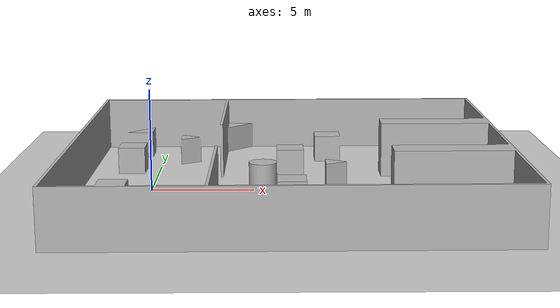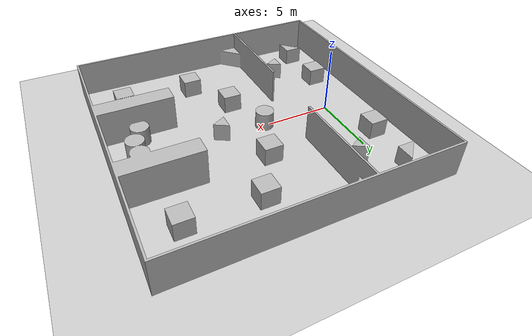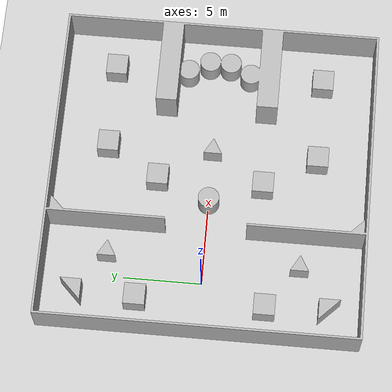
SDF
<sdf version='1.10'>
  <world name='leo_empty'>
    <physics name='1ms' type='ignored'>
      <max_step_size>0.001</max_step_size>
      <real_time_factor>1</real_time_factor>
      <real_time_update_rate>1000</real_time_update_rate>
    </physics>
    <plugin name='gz::sim::systems::Physics' filename='gz-sim-physics-system'/>
    <plugin name='gz::sim::systems::Sensors' filename='gz-sim-sensors-system'/>
    <plugin name='gz::sim::systems::SceneBroadcaster' filename='gz-sim-scene-broadcaster-system'/>
    <plugin name='gz::sim::systems::UserCommands' filename='gz-sim-user-commands-system'/>
    <plugin name='gz::sim::systems::Imu' filename='gz-sim-imu-system'/>
    <gravity>0 0 -9.8000000000000007</gravity>
    <magnetic_field>5.5644999999999998e-06 2.2875799999999999e-05 -4.2388400000000002e-05</magnetic_field>
    <atmosphere type='adiabatic'/>
    <scene>
      <ambient>0.400000006 0.400000006 0.400000006 1</ambient>
      <background>0.699999988 0.699999988 0.699999988 1</background>
      <shadows>true</shadows>
    </scene>
    <model name='ground_plane'>
      <static>true</static>
      <link name='link'>
        <collision name='collision'>
          <geometry>
            <plane>
              <normal>0 0 1</normal>
              <size>100 100</size>
            </plane>
          </geometry>
          <surface>
            <friction>
              <ode>
                <mu>50</mu>
              </ode>
              <bullet>
                <friction>1</friction>
                <friction2>1</friction2>
                <rolling_friction>0.10000000000000001</rolling_friction>
              </bullet>
            </friction>
            <bounce/>
            <contact/>
          </surface>
        </collision>
        <visual name='visual'>
          <geometry>
            <plane>
              <normal>0 0 1</normal>
              <size>100 100</size>
            </plane>
          </geometry>
          <material>
            <ambient>0.800000012 0.800000012 0.800000012 1</ambient>
            <diffuse>0.800000012 0.800000012 0.800000012 1</diffuse>
            <specular>0.800000012 0.800000012 0.800000012 1</specular>
          </material>
        </visual>
        <pose>0 0 0 0 0 0</pose>
        <inertial>
          <pose>0 0 0 0 0 0</pose>
          <mass>1</mass>
          <inertia>
            <ixx>1</ixx>
            <ixy>0</ixy>
            <ixz>0</ixz>
            <iyy>1</iyy>
            <iyz>0</iyz>
            <izz>1</izz>
          </inertia>
        </inertial>
        <enable_wind>false</enable_wind>
      </link>
      <pose>0 0 0 0 0 0</pose>
      <self_collide>false</self_collide>
    </model>

    <model name='abstract'>
      <link name='link'>
        <visual name='visual'>
          <geometry>
            <mesh>
              <uri>model://testing_worlds_models/abstract_small.obj</uri>
            </mesh>
          </geometry>
        </visual>
        <collision name='collision'>
          <geometry>
            <mesh>
              <uri>model://testing_worlds_models/abstract_small.obj</uri>
            </mesh>
          </geometry>
        </collision>
        <pose>0 0 0 0 0 0</pose>
        <inertial>
          <pose>0 0 0 0 0 0</pose>
          <mass>1</mass>
          <inertia>
            <ixx>1</ixx>
            <ixy>0</ixy>
            <ixz>0</ixz>
            <iyy>1</iyy>
            <iyz>0</iyz>
            <izz>1</izz>
          </inertia>
        </inertial>
        <enable_wind>false</enable_wind>
      </link>
      <pose>-3.0000018935314503 -2.1445557312336089e-06 -0.0029778477636229917 1.570557302399838 -0.0028035259521081071 8.2149209416270688e-07</pose>
      <static>true</static>
      <self_collide>false</self_collide>
    </model>
    <light name='sun' type='directional'>
      <pose>0 0 10 0 0 0</pose>
      <cast_shadows>true</cast_shadows>
      <intensity>1</intensity>
      <direction>-0.5 0.10000000000000001 -0.90000000000000002</direction>
      <diffuse>0.800000012 0.800000012 0.800000012 1</diffuse>
      <specular>0.200000003 0.200000003 0.200000003 1</specular>
      <attenuation>
        <range>1000</range>
        <linear>0.0099999997764825821</linear>
        <constant>0.89999997615814209</constant>
        <quadratic>0.0010000000474974513</quadratic>
      </attenuation>
      <spot>
        <inner_angle>0</inner_angle>
        <outer_angle>0</outer_angle>
        <falloff>0</falloff>
      </spot>
    </light>
  </world>
</sdf>
